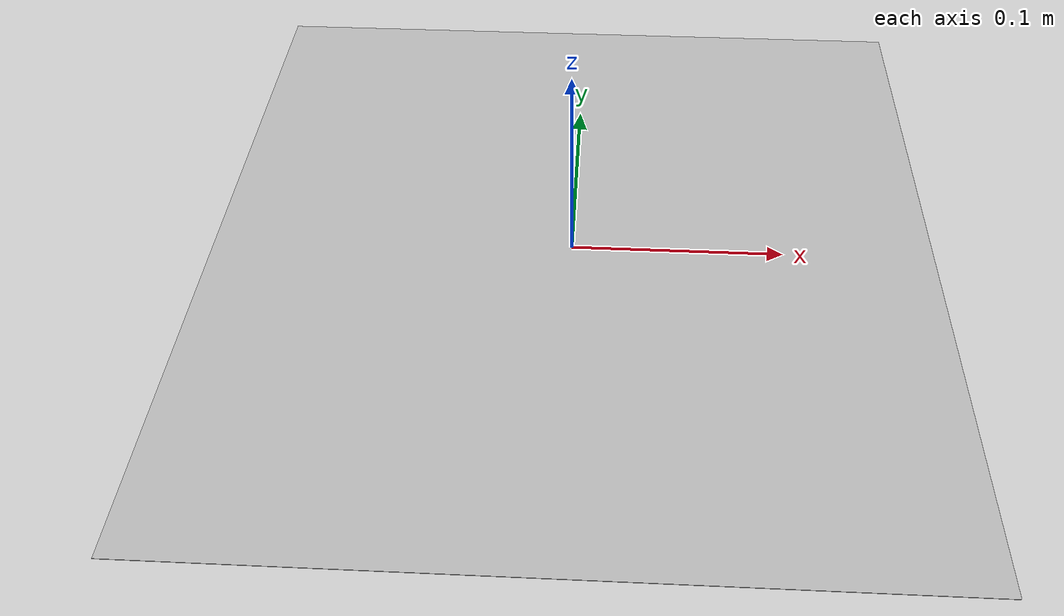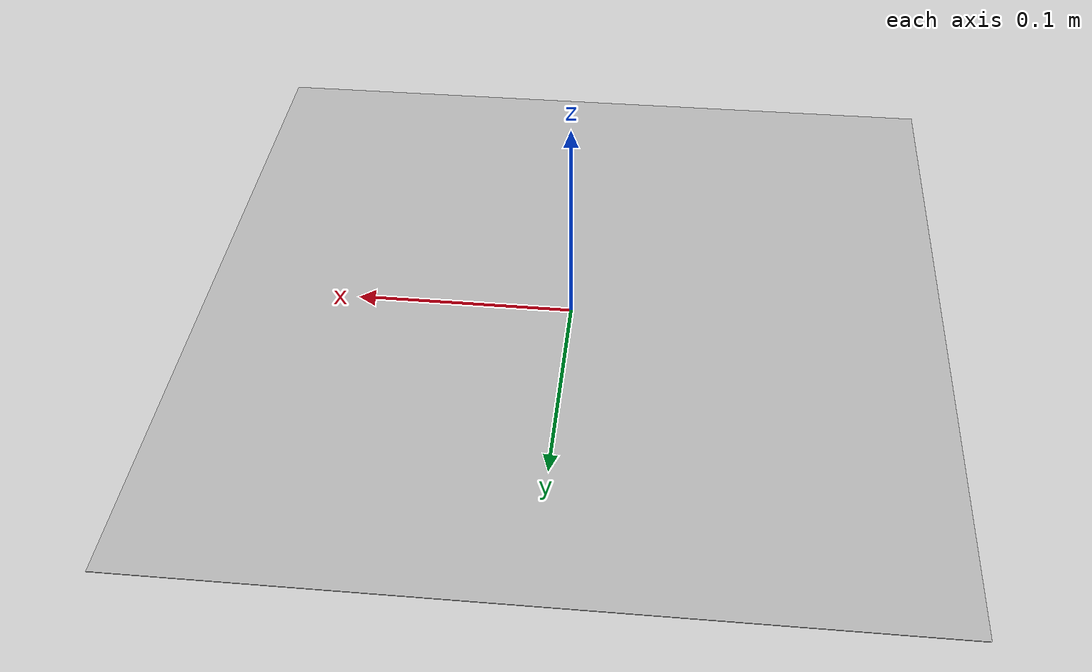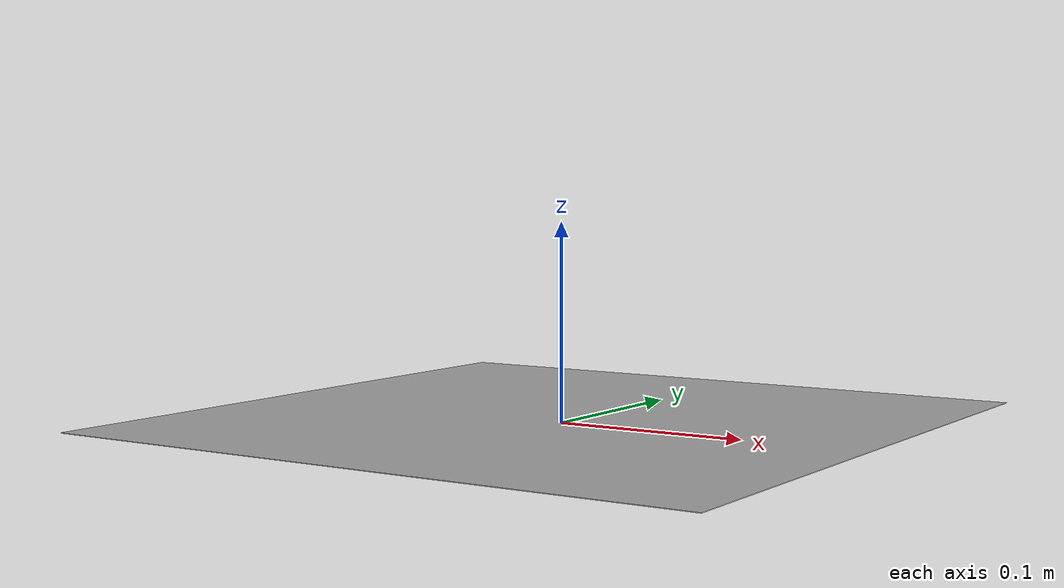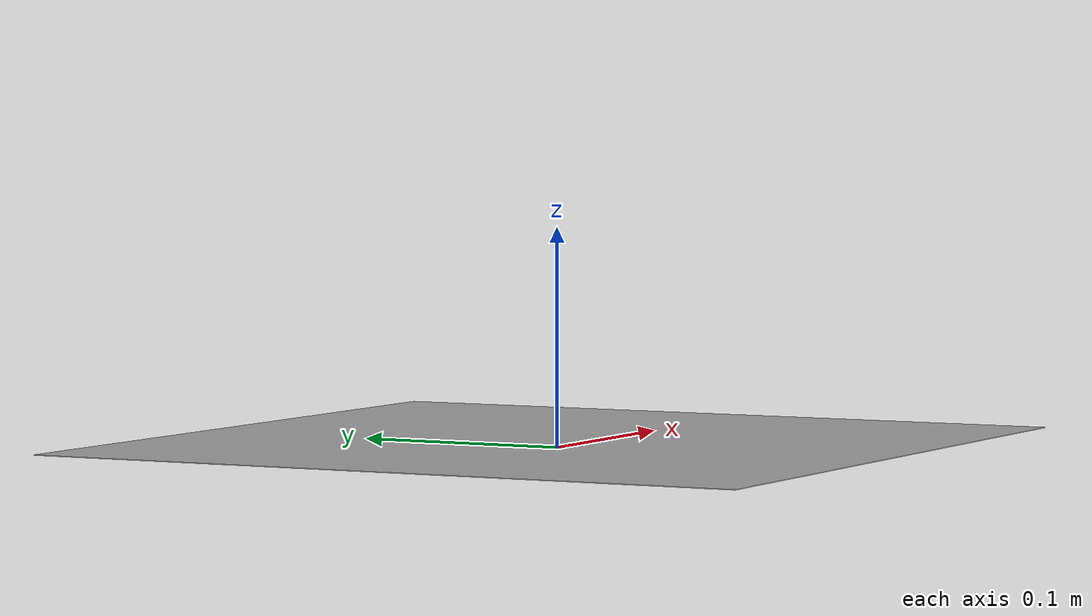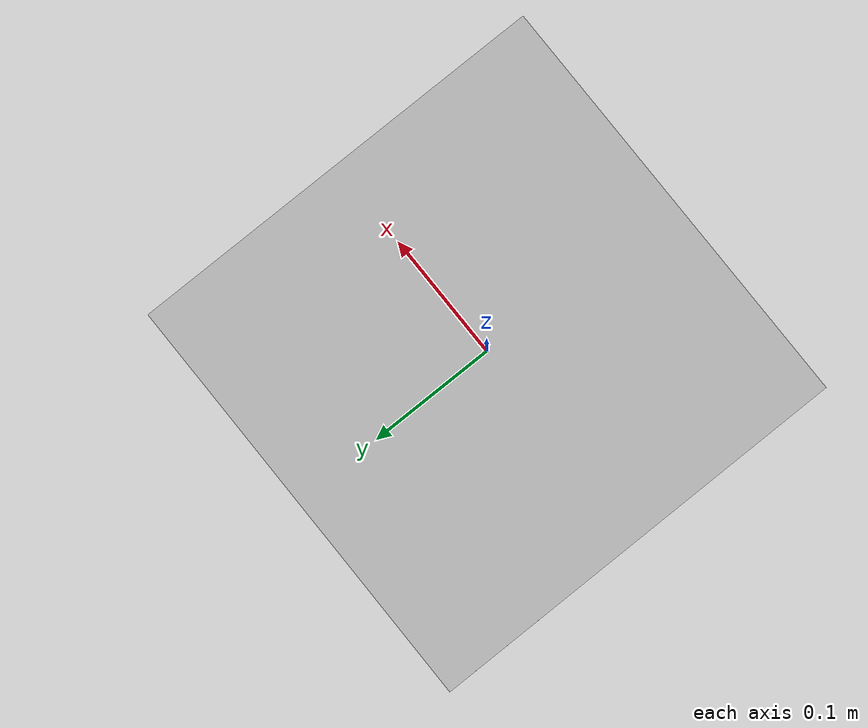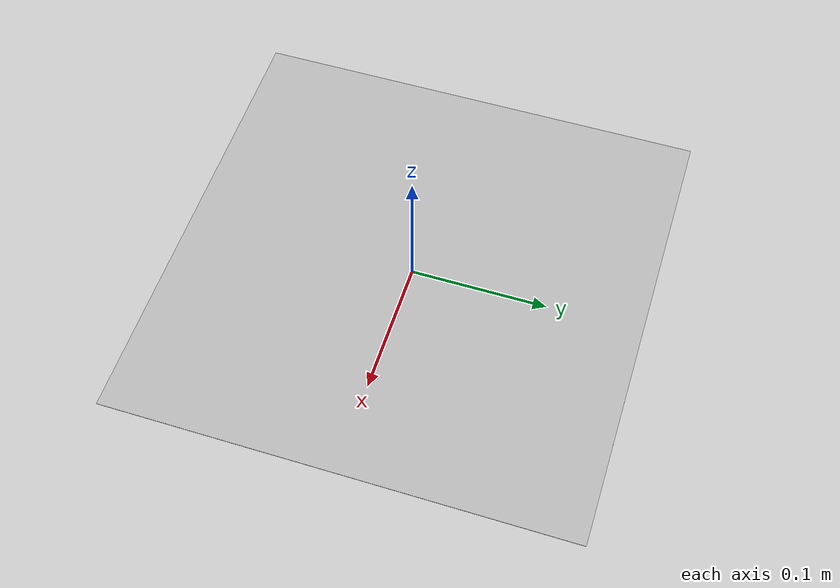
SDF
<?xml version="1.0"?>
<sdf version="1.6">
  <model name="qr_marker_08">
    <static>true</static>
    <link name="link">
      <visual name="qr_visual">
        <pose>0 0 0.003 0 0 0</pose>
        <geometry>
          <plane>
            <normal>0 0 1</normal>
            <size>0.34 0.34</size>
          </plane>
        </geometry>
        <material>
          <script>
            <uri>model://qr_marker_08/materials/scripts</uri>
            <uri>model://qr_marker_08/materials/textures</uri>
            <name>QR/Marker08</name>
          </script>
        </material>
      </visual>
    </link>
  </model>
</sdf>
